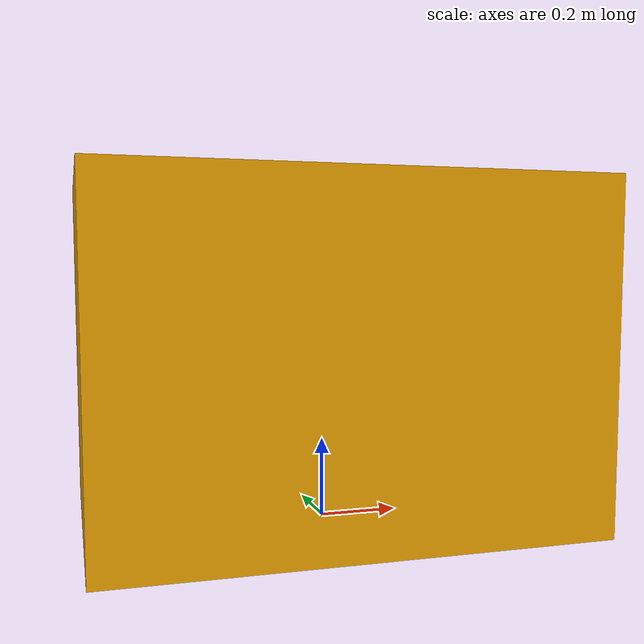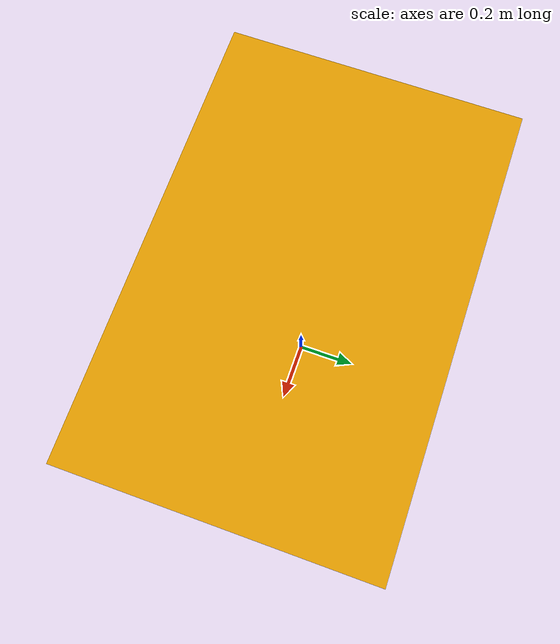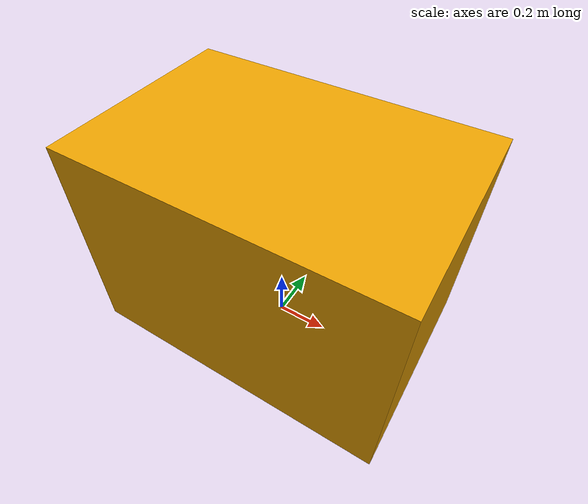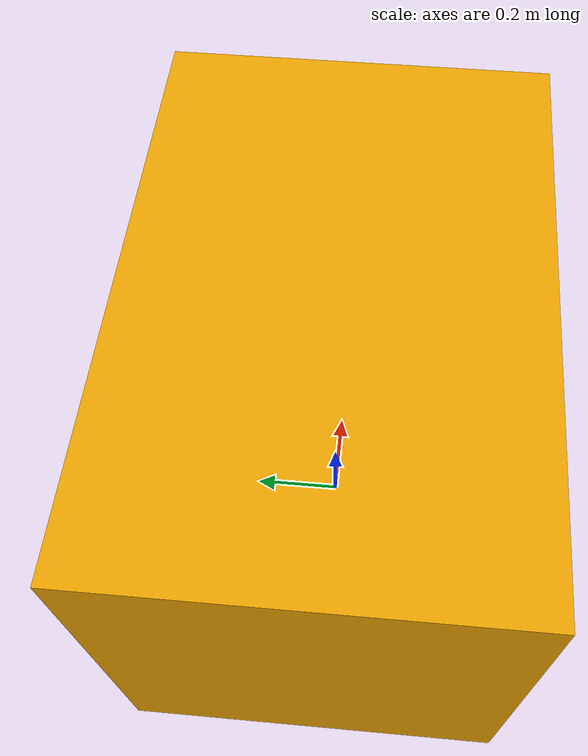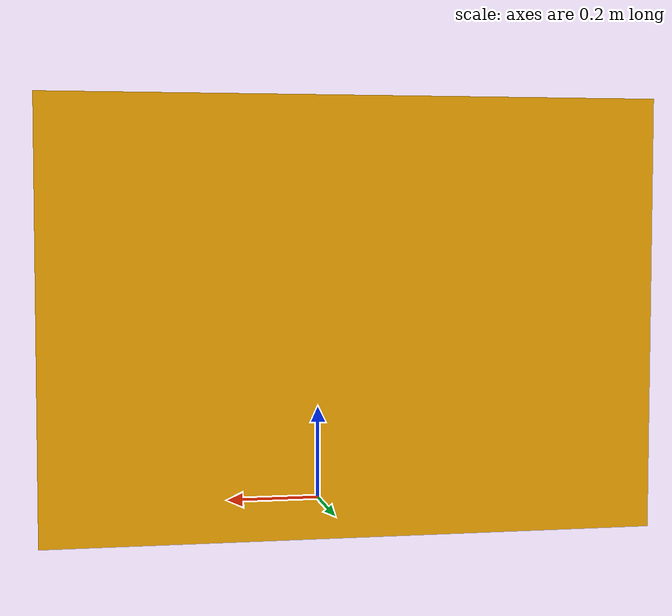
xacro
<?xml version="1.0"?>
<robot name="workbench" xmlns:xacro="http://www.ros.org/wiki/xacro">
  <link name="workbench_link">
    <visual>
      <geometry><box size="1.2 0.8 0.85"/></geometry>
      <origin xyz="0 0 0.425" rpy="0 0 0"/>
    </visual>
    <collision>
      <geometry><box size="1.2 0.8 0.85"/></geometry>
      <origin xyz="0 0 0.425" rpy="0 0 0"/>
    </collision>
    <inertial>
      <mass value="20"/>
      <inertia ixx="2" iyy="2" izz="2" ixy="0" ixz="0" iyz="0"/>
    </inertial>
  </link>
</robot>
